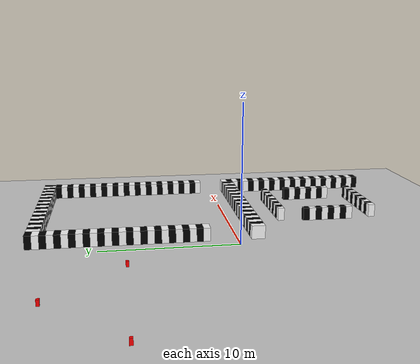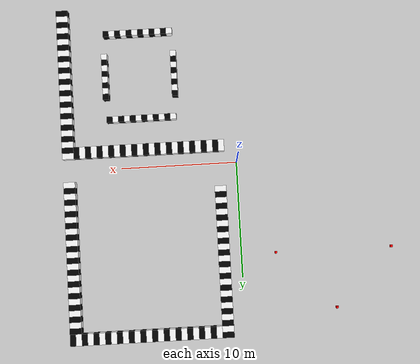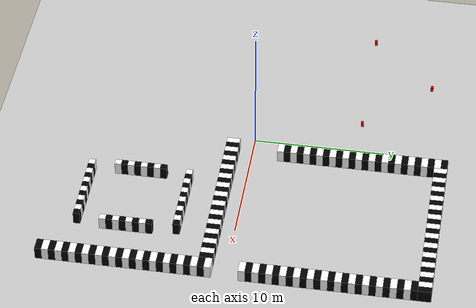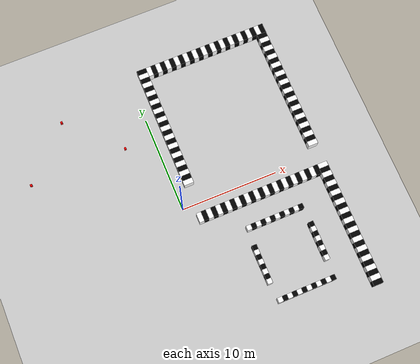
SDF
<sdf version="1.9">
 <world name="default">
  <model name="ground_plane">
   <static>true</static>
   <link name="link">
    <collision name="collision">
     <geometry><plane><normal>0 0 1</normal><size>100 100</size></plane></geometry>
    </collision>
    <visual name="visual">
     <geometry><plane><normal>0 0 1</normal><size>100 100</size></plane></geometry>
     <material>
      <ambient>0.8 0.8 0.8 1</ambient>
      <diffuse>0.8 0.8 0.8 1</diffuse>
      <specular>0.8 0.8 0.8 1</specular>
     </material>
    </visual>
   </link>
  </model>
  <model name="env2wall3">
   <static>true</static>
   <link name="link">
    <collision name="collision1">
     <geometry>
      <polyline>
       <point>14 -1</point>
       <point>14 -14</point>
       <point>15 -14</point>
       <point>15 -1</point>
       <height>1</height>
      </polyline>
     </geometry>
    </collision>
    <visual name="s1">
     <pose>14.5 -1.25 0.5 0 0 0</pose>
     <geometry><box><size>1 0.5 1</size></box></geometry>
     <material><ambient>1 1 1 1</ambient><diffuse>1 1 1 1</diffuse></material>
    </visual>
    <visual name="s2">
     <pose>14.5 -1.75 0.5 0 0 0</pose>
     <geometry><box><size>1 0.5 1</size></box></geometry>
     <material><ambient>0 0 0 1</ambient><diffuse>0 0 0 1</diffuse></material>
    </visual>
    <visual name="s3">
     <pose>14.5 -2.25 0.5 0 0 0</pose>
     <geometry><box><size>1 0.5 1</size></box></geometry>
     <material><ambient>1 1 1 1</ambient><diffuse>1 1 1 1</diffuse></material>
    </visual>
    <visual name="s4">
     <pose>14.5 -2.75 0.5 0 0 0</pose>
     <geometry><box><size>1 0.5 1</size></box></geometry>
     <material><ambient>0 0 0 1</ambient><diffuse>0 0 0 1</diffuse></material>
    </visual>
    <visual name="s5">
     <pose>14.5 -3.25 0.5 0 0 0</pose>
     <geometry><box><size>1 0.5 1</size></box></geometry>
     <material><ambient>1 1 1 1</ambient><diffuse>1 1 1 1</diffuse></material>
    </visual>
    <visual name="s6">
     <pose>14.5 -3.75 0.5 0 0 0</pose>
     <geometry><box><size>1 0.5 1</size></box></geometry>
     <material><ambient>0 0 0 1</ambient><diffuse>0 0 0 1</diffuse></material>
    </visual>
    <visual name="s7">
     <pose>14.5 -4.25 0.5 0 0 0</pose>
     <geometry><box><size>1 0.5 1</size></box></geometry>
     <material><ambient>1 1 1 1</ambient><diffuse>1 1 1 1</diffuse></material>
    </visual>
    <visual name="s8">
     <pose>14.5 -4.75 0.5 0 0 0</pose>
     <geometry><box><size>1 0.5 1</size></box></geometry>
     <material><ambient>0 0 0 1</ambient><diffuse>0 0 0 1</diffuse></material>
    </visual>
    <visual name="s9">
     <pose>14.5 -5.25 0.5 0 0 0</pose>
     <geometry><box><size>1 0.5 1</size></box></geometry>
     <material><ambient>1 1 1 1</ambient><diffuse>1 1 1 1</diffuse></material>
    </visual>
    <visual name="s10">
     <pose>14.5 -5.75 0.5 0 0 0</pose>
     <geometry><box><size>1 0.5 1</size></box></geometry>
     <material><ambient>0 0 0 1</ambient><diffuse>0 0 0 1</diffuse></material>
    </visual>
    <visual name="s11">
     <pose>14.5 -6.25 0.5 0 0 0</pose>
     <geometry><box><size>1 0.5 1</size></box></geometry>
     <material><ambient>1 1 1 1</ambient><diffuse>1 1 1 1</diffuse></material>
    </visual>
    <visual name="s12">
     <pose>14.5 -6.75 0.5 0 0 0</pose>
     <geometry><box><size>1 0.5 1</size></box></geometry>
     <material><ambient>0 0 0 1</ambient><diffuse>0 0 0 1</diffuse></material>
    </visual>
    <visual name="s13">
     <pose>14.5 -7.25 0.5 0 0 0</pose>
     <geometry><box><size>1 0.5 1</size></box></geometry>
     <material><ambient>1 1 1 1</ambient><diffuse>1 1 1 1</diffuse></material>
    </visual>
    <visual name="s14">
     <pose>14.5 -7.75 0.5 0 0 0</pose>
     <geometry><box><size>1 0.5 1</size></box></geometry>
     <material><ambient>0 0 0 1</ambient><diffuse>0 0 0 1</diffuse></material>
    </visual>
    <visual name="s15">
     <pose>14.5 -8.25 0.5 0 0 0</pose>
     <geometry><box><size>1 0.5 1</size></box></geometry>
     <material><ambient>1 1 1 1</ambient><diffuse>1 1 1 1</diffuse></material>
    </visual>
    <visual name="s16">
     <pose>14.5 -8.75 0.5 0 0 0</pose>
     <geometry><box><size>1 0.5 1</size></box></geometry>
     <material><ambient>0 0 0 1</ambient><diffuse>0 0 0 1</diffuse></material>
    </visual>
    <visual name="s17">
     <pose>14.5 -9.25 0.5 0 0 0</pose>
     <geometry><box><size>1 0.5 1</size></box></geometry>
     <material><ambient>1 1 1 1</ambient><diffuse>1 1 1 1</diffuse></material>
    </visual>
    <visual name="s18">
     <pose>14.5 -9.75 0.5 0 0 0</pose>
     <geometry><box><size>1 0.5 1</size></box></geometry>
     <material><ambient>0 0 0 1</ambient><diffuse>0 0 0 1</diffuse></material>
    </visual>
    <visual name="s19">
     <pose>14.5 -10.25 0.5 0 0 0</pose>
     <geometry><box><size>1 0.5 1</size></box></geometry>
     <material><ambient>1 1 1 1</ambient><diffuse>1 1 1 1</diffuse></material>
    </visual>
    <visual name="s20">
     <pose>14.5 -10.75 0.5 0 0 0</pose>
     <geometry><box><size>1 0.5 1</size></box></geometry>
     <material><ambient>0 0 0 1</ambient><diffuse>0 0 0 1</diffuse></material>
    </visual>
    <visual name="s21">
     <pose>14.5 -11.25 0.5 0 0 0</pose>
     <geometry><box><size>1 0.5 1</size></box></geometry>
     <material><ambient>1 1 1 1</ambient><diffuse>1 1 1 1</diffuse></material>
    </visual>
    <visual name="s22">
     <pose>14.5 -11.75 0.5 0 0 0</pose>
     <geometry><box><size>1 0.5 1</size></box></geometry>
     <material><ambient>0 0 0 1</ambient><diffuse>0 0 0 1</diffuse></material>
    </visual>
    <visual name="s23">
     <pose>14.5 -12.25 0.5 0 0 0</pose>
     <geometry><box><size>1 0.5 1</size></box></geometry>
     <material><ambient>1 1 1 1</ambient><diffuse>1 1 1 1</diffuse></material>
    </visual>
    <visual name="s24">
     <pose>14.5 -12.75 0.5 0 0 0</pose>
     <geometry><box><size>1 0.5 1</size></box></geometry>
     <material><ambient>0 0 0 1</ambient><diffuse>0 0 0 1</diffuse></material>
    </visual>
    <visual name="s25">
     <pose>14.5 -13.25 0.5 0 0 0</pose>
     <geometry><box><size>1 0.5 1</size></box></geometry>
     <material><ambient>1 1 1 1</ambient><diffuse>1 1 1 1</diffuse></material>
    </visual>
    <visual name="s26">
     <pose>14.5 -13.75 0.5 0 0 0</pose>
     <geometry><box><size>1 0.5 1</size></box></geometry>
     <material><ambient>0 0 0 1</ambient><diffuse>0 0 0 1</diffuse></material>
    </visual>
   </link>
  </model>
  <model name="env2wall4">
   <static>true</static>
   <link name="link">
    <collision name="collision1">
     <geometry>
      <polyline>
       <point>1 -1</point>
       <point>1 -2</point>
       <point>14 -2</point>
       <point>14 -1</point>
       <height>1</height>
      </polyline>
     </geometry>
    </collision>
    <visual name="s1">
     <pose>1.25 -1.5 0.5 0 0 0</pose>
     <geometry><box><size>0.5 1 1</size></box></geometry>
     <material><ambient>1 1 1 1</ambient><diffuse>1 1 1 1</diffuse></material>
    </visual>
    <visual name="s2">
     <pose>1.75 -1.5 0.5 0 0 0</pose>
     <geometry><box><size>0.5 1 1</size></box></geometry>
     <material><ambient>0 0 0 1</ambient><diffuse>0 0 0 1</diffuse></material>
    </visual>
    <visual name="s3">
     <pose>2.25 -1.5 0.5 0 0 0</pose>
     <geometry><box><size>0.5 1 1</size></box></geometry>
     <material><ambient>1 1 1 1</ambient><diffuse>1 1 1 1</diffuse></material>
    </visual>
    <visual name="s4">
     <pose>2.75 -1.5 0.5 0 0 0</pose>
     <geometry><box><size>0.5 1 1</size></box></geometry>
     <material><ambient>0 0 0 1</ambient><diffuse>0 0 0 1</diffuse></material>
    </visual>
    <visual name="s5">
     <pose>3.25 -1.5 0.5 0 0 0</pose>
     <geometry><box><size>0.5 1 1</size></box></geometry>
     <material><ambient>1 1 1 1</ambient><diffuse>1 1 1 1</diffuse></material>
    </visual>
    <visual name="s6">
     <pose>3.75 -1.5 0.5 0 0 0</pose>
     <geometry><box><size>0.5 1 1</size></box></geometry>
     <material><ambient>0 0 0 1</ambient><diffuse>0 0 0 1</diffuse></material>
    </visual>
    <visual name="s7">
     <pose>4.25 -1.5 0.5 0 0 0</pose>
     <geometry><box><size>0.5 1 1</size></box></geometry>
     <material><ambient>1 1 1 1</ambient><diffuse>1 1 1 1</diffuse></material>
    </visual>
    <visual name="s8">
     <pose>4.75 -1.5 0.5 0 0 0</pose>
     <geometry><box><size>0.5 1 1</size></box></geometry>
     <material><ambient>0 0 0 1</ambient><diffuse>0 0 0 1</diffuse></material>
    </visual>
    <visual name="s9">
     <pose>5.25 -1.5 0.5 0 0 0</pose>
     <geometry><box><size>0.5 1 1</size></box></geometry>
     <material><ambient>1 1 1 1</ambient><diffuse>1 1 1 1</diffuse></material>
    </visual>
    <visual name="s10">
     <pose>5.75 -1.5 0.5 0 0 0</pose>
     <geometry><box><size>0.5 1 1</size></box></geometry>
     <material><ambient>0 0 0 1</ambient><diffuse>0 0 0 1</diffuse></material>
    </visual>
    <visual name="s11">
     <pose>6.25 -1.5 0.5 0 0 0</pose>
     <geometry><box><size>0.5 1 1</size></box></geometry>
     <material><ambient>1 1 1 1</ambient><diffuse>1 1 1 1</diffuse></material>
    </visual>
    <visual name="s12">
     <pose>6.75 -1.5 0.5 0 0 0</pose>
     <geometry><box><size>0.5 1 1</size></box></geometry>
     <material><ambient>0 0 0 1</ambient><diffuse>0 0 0 1</diffuse></material>
    </visual>
    <visual name="s13">
     <pose>7.25 -1.5 0.5 0 0 0</pose>
     <geometry><box><size>0.5 1 1</size></box></geometry>
     <material><ambient>1 1 1 1</ambient><diffuse>1 1 1 1</diffuse></material>
    </visual>
    <visual name="s14">
     <pose>7.75 -1.5 0.5 0 0 0</pose>
     <geometry><box><size>0.5 1 1</size></box></geometry>
     <material><ambient>0 0 0 1</ambient><diffuse>0 0 0 1</diffuse></material>
    </visual>
    <visual name="s15">
     <pose>8.25 -1.5 0.5 0 0 0</pose>
     <geometry><box><size>0.5 1 1</size></box></geometry>
     <material><ambient>1 1 1 1</ambient><diffuse>1 1 1 1</diffuse></material>
    </visual>
    <visual name="s16">
     <pose>8.75 -1.5 0.5 0 0 0</pose>
     <geometry><box><size>0.5 1 1</size></box></geometry>
     <material><ambient>0 0 0 1</ambient><diffuse>0 0 0 1</diffuse></material>
    </visual>
    <visual name="s17">
     <pose>9.25 -1.5 0.5 0 0 0</pose>
     <geometry><box><size>0.5 1 1</size></box></geometry>
     <material><ambient>1 1 1 1</ambient><diffuse>1 1 1 1</diffuse></material>
    </visual>
    <visual name="s18">
     <pose>9.75 -1.5 0.5 0 0 0</pose>
     <geometry><box><size>0.5 1 1</size></box></geometry>
     <material><ambient>0 0 0 1</ambient><diffuse>0 0 0 1</diffuse></material>
    </visual>
    <visual name="s19">
     <pose>10.25 -1.5 0.5 0 0 0</pose>
     <geometry><box><size>0.5 1 1</size></box></geometry>
     <material><ambient>1 1 1 1</ambient><diffuse>1 1 1 1</diffuse></material>
    </visual>
    <visual name="s20">
     <pose>10.75 -1.5 0.5 0 0 0</pose>
     <geometry><box><size>0.5 1 1</size></box></geometry>
     <material><ambient>0 0 0 1</ambient><diffuse>0 0 0 1</diffuse></material>
    </visual>
    <visual name="s21">
     <pose>11.25 -1.5 0.5 0 0 0</pose>
     <geometry><box><size>0.5 1 1</size></box></geometry>
     <material><ambient>1 1 1 1</ambient><diffuse>1 1 1 1</diffuse></material>
    </visual>
    <visual name="s22">
     <pose>11.75 -1.5 0.5 0 0 0</pose>
     <geometry><box><size>0.5 1 1</size></box></geometry>
     <material><ambient>0 0 0 1</ambient><diffuse>0 0 0 1</diffuse></material>
    </visual>
    <visual name="s23">
     <pose>12.25 -1.5 0.5 0 0 0</pose>
     <geometry><box><size>0.5 1 1</size></box></geometry>
     <material><ambient>1 1 1 1</ambient><diffuse>1 1 1 1</diffuse></material>
    </visual>
    <visual name="s24">
     <pose>12.75 -1.5 0.5 0 0 0</pose>
     <geometry><box><size>0.5 1 1</size></box></geometry>
     <material><ambient>0 0 0 1</ambient><diffuse>0 0 0 1</diffuse></material>
    </visual>
    <visual name="s25">
     <pose>13.25 -1.5 0.5 0 0 0</pose>
     <geometry><box><size>0.5 1 1</size></box></geometry>
     <material><ambient>1 1 1 1</ambient><diffuse>1 1 1 1</diffuse></material>
    </visual>
    <visual name="s26">
     <pose>13.75 -1.5 0.5 0 0 0</pose>
     <geometry><box><size>0.5 1 1</size></box></geometry>
     <material><ambient>0 0 0 1</ambient><diffuse>0 0 0 1</diffuse></material>
    </visual>
   </link>
  </model>
  <model name="env2obs1">
   <static>true</static>
   <link name="link">
    <collision name="collision1">
     <geometry>
      <polyline>
       <point>5 -4.5</point>
       <point>5 -4</point>
       <point>11 -4</point>
       <point>11 -4.5</point>
       <height>1</height>
      </polyline>
     </geometry>
    </collision>
    <visual name="s1">
     <pose>5.25 -4.25 0.5 0 0 0</pose>
     <geometry><box><size>0.5 0.5 1</size></box></geometry>
     <material><ambient>1 1 1 1</ambient><diffuse>1 1 1 1</diffuse></material>
    </visual>
    <visual name="s2">
     <pose>5.75 -4.25 0.5 0 0 0</pose>
     <geometry><box><size>0.5 0.5 1</size></box></geometry>
     <material><ambient>0 0 0 1</ambient><diffuse>0 0 0 1</diffuse></material>
    </visual>
    <visual name="s3">
     <pose>6.25 -4.25 0.5 0 0 0</pose>
     <geometry><box><size>0.5 0.5 1</size></box></geometry>
     <material><ambient>1 1 1 1</ambient><diffuse>1 1 1 1</diffuse></material>
    </visual>
    <visual name="s4">
     <pose>6.75 -4.25 0.5 0 0 0</pose>
     <geometry><box><size>0.5 0.5 1</size></box></geometry>
     <material><ambient>0 0 0 1</ambient><diffuse>0 0 0 1</diffuse></material>
    </visual>
    <visual name="s5">
     <pose>7.25 -4.25 0.5 0 0 0</pose>
     <geometry><box><size>0.5 0.5 1</size></box></geometry>
     <material><ambient>1 1 1 1</ambient><diffuse>1 1 1 1</diffuse></material>
    </visual>
    <visual name="s6">
     <pose>7.75 -4.25 0.5 0 0 0</pose>
     <geometry><box><size>0.5 0.5 1</size></box></geometry>
     <material><ambient>0 0 0 1</ambient><diffuse>0 0 0 1</diffuse></material>
    </visual>
    <visual name="s7">
     <pose>8.25 -4.25 0.5 0 0 0</pose>
     <geometry><box><size>0.5 0.5 1</size></box></geometry>
     <material><ambient>1 1 1 1</ambient><diffuse>1 1 1 1</diffuse></material>
    </visual>
    <visual name="s8">
     <pose>8.75 -4.25 0.5 0 0 0</pose>
     <geometry><box><size>0.5 0.5 1</size></box></geometry>
     <material><ambient>0 0 0 1</ambient><diffuse>0 0 0 1</diffuse></material>
    </visual>
    <visual name="s9">
     <pose>9.25 -4.25 0.5 0 0 0</pose>
     <geometry><box><size>0.5 0.5 1</size></box></geometry>
     <material><ambient>1 1 1 1</ambient><diffuse>1 1 1 1</diffuse></material>
    </visual>
    <visual name="s10">
     <pose>9.75 -4.25 0.5 0 0 0</pose>
     <geometry><box><size>0.5 0.5 1</size></box></geometry>
     <material><ambient>0 0 0 1</ambient><diffuse>0 0 0 1</diffuse></material>
    </visual>
    <visual name="s11">
     <pose>10.25 -4.25 0.5 0 0 0</pose>
     <geometry><box><size>0.5 0.5 1</size></box></geometry>
     <material><ambient>1 1 1 1</ambient><diffuse>1 1 1 1</diffuse></material>
    </visual>
    <visual name="s12">
     <pose>10.75 -4.25 0.5 0 0 0</pose>
     <geometry><box><size>0.5 0.5 1</size></box></geometry>
     <material><ambient>0 0 0 1</ambient><diffuse>0 0 0 1</diffuse></material>
    </visual>
   </link>
  </model>
  <model name="env2obs2">
   <static>true</static>
   <link name="link">
    <collision name="collision1">
     <geometry>
      <polyline>
       <point>5 -11.5</point>
       <point>5 -12</point>
       <point>11 -12</point>
       <point>11 -11.5</point>
       <height>1</height>
      </polyline>
     </geometry>
    </collision>
    <visual name="s1">
     <pose>5.25 -11.75 0.5 0 0 0</pose>
     <geometry><box><size>0.5 0.5 1</size></box></geometry>
     <material><ambient>1 1 1 1</ambient><diffuse>1 1 1 1</diffuse></material>
    </visual>
    <visual name="s2">
     <pose>5.75 -11.75 0.5 0 0 0</pose>
     <geometry><box><size>0.5 0.5 1</size></box></geometry>
     <material><ambient>0 0 0 1</ambient><diffuse>0 0 0 1</diffuse></material>
    </visual>
    <visual name="s3">
     <pose>6.25 -11.75 0.5 0 0 0</pose>
     <geometry><box><size>0.5 0.5 1</size></box></geometry>
     <material><ambient>1 1 1 1</ambient><diffuse>1 1 1 1</diffuse></material>
    </visual>
    <visual name="s4">
     <pose>6.75 -11.75 0.5 0 0 0</pose>
     <geometry><box><size>0.5 0.5 1</size></box></geometry>
     <material><ambient>0 0 0 1</ambient><diffuse>0 0 0 1</diffuse></material>
    </visual>
    <visual name="s5">
     <pose>7.25 -11.75 0.5 0 0 0</pose>
     <geometry><box><size>0.5 0.5 1</size></box></geometry>
     <material><ambient>1 1 1 1</ambient><diffuse>1 1 1 1</diffuse></material>
    </visual>
    <visual name="s6">
     <pose>7.75 -11.75 0.5 0 0 0</pose>
     <geometry><box><size>0.5 0.5 1</size></box></geometry>
     <material><ambient>0 0 0 1</ambient><diffuse>0 0 0 1</diffuse></material>
    </visual>
    <visual name="s7">
     <pose>8.25 -11.75 0.5 0 0 0</pose>
     <geometry><box><size>0.5 0.5 1</size></box></geometry>
     <material><ambient>1 1 1 1</ambient><diffuse>1 1 1 1</diffuse></material>
    </visual>
    <visual name="s8">
     <pose>8.75 -11.75 0.5 0 0 0</pose>
     <geometry><box><size>0.5 0.5 1</size></box></geometry>
     <material><ambient>0 0 0 1</ambient><diffuse>0 0 0 1</diffuse></material>
    </visual>
    <visual name="s9">
     <pose>9.25 -11.75 0.5 0 0 0</pose>
     <geometry><box><size>0.5 0.5 1</size></box></geometry>
     <material><ambient>1 1 1 1</ambient><diffuse>1 1 1 1</diffuse></material>
    </visual>
    <visual name="s10">
     <pose>9.75 -11.75 0.5 0 0 0</pose>
     <geometry><box><size>0.5 0.5 1</size></box></geometry>
     <material><ambient>0 0 0 1</ambient><diffuse>0 0 0 1</diffuse></material>
    </visual>
    <visual name="s11">
     <pose>10.25 -11.75 0.5 0 0 0</pose>
     <geometry><box><size>0.5 0.5 1</size></box></geometry>
     <material><ambient>1 1 1 1</ambient><diffuse>1 1 1 1</diffuse></material>
    </visual>
    <visual name="s12">
     <pose>10.75 -11.75 0.5 0 0 0</pose>
     <geometry><box><size>0.5 0.5 1</size></box></geometry>
     <material><ambient>0 0 0 1</ambient><diffuse>0 0 0 1</diffuse></material>
    </visual>
   </link>
  </model>
  <model name="env2obs3">
   <static>true</static>
   <link name="link">
    <collision name="collision1">
     <geometry>
      <polyline>
       <point>5.25 -6</point>
       <point>4.75 -6</point>
       <point>4.75 -10</point>
       <point>5.25 -10</point>
       <height>1</height>
      </polyline>
     </geometry>
    </collision>
    <visual name="s1">
     <pose>5 -9.75 0.5 0 0 0</pose>
     <geometry><box><size>0.5 0.5 1</size></box></geometry>
     <material><ambient>1 1 1 1</ambient><diffuse>1 1 1 1</diffuse></material>
    </visual>
    <visual name="s2">
     <pose>5 -9.25 0.5 0 0 0</pose>
     <geometry><box><size>0.5 0.5 1</size></box></geometry>
     <material><ambient>0 0 0 1</ambient><diffuse>0 0 0 1</diffuse></material>
    </visual>
    <visual name="s3">
     <pose>5 -8.75 0.5 0 0 0</pose>
     <geometry><box><size>0.5 0.5 1</size></box></geometry>
     <material><ambient>1 1 1 1</ambient><diffuse>1 1 1 1</diffuse></material>
    </visual>
    <visual name="s4">
     <pose>5 -8.25 0.5 0 0 0</pose>
     <geometry><box><size>0.5 0.5 1</size></box></geometry>
     <material><ambient>0 0 0 1</ambient><diffuse>0 0 0 1</diffuse></material>
    </visual>
    <visual name="s5">
     <pose>5 -7.75 0.5 0 0 0</pose>
     <geometry><box><size>0.5 0.5 1</size></box></geometry>
     <material><ambient>1 1 1 1</ambient><diffuse>1 1 1 1</diffuse></material>
    </visual>
    <visual name="s6">
     <pose>5 -7.25 0.5 0 0 0</pose>
     <geometry><box><size>0.5 0.5 1</size></box></geometry>
     <material><ambient>0 0 0 1</ambient><diffuse>0 0 0 1</diffuse></material>
    </visual>
    <visual name="s7">
     <pose>5 -6.75 0.5 0 0 0</pose>
     <geometry><box><size>0.5 0.5 1</size></box></geometry>
     <material><ambient>1 1 1 1</ambient><diffuse>1 1 1 1</diffuse></material>
    </visual>
    <visual name="s8">
     <pose>5 -6.25 0.5 0 0 0</pose>
     <geometry><box><size>0.5 0.5 1</size></box></geometry>
     <material><ambient>0 0 0 1</ambient><diffuse>0 0 0 1</diffuse></material>
    </visual>
   </link>
  </model>
  <model name="env2obs4">
   <static>true</static>
   <link name="link">
    <collision name="collision1">
     <geometry>
      <polyline>
       <point>10.75 -6</point>
       <point>11.25 -6</point>
       <point>11.25 -10</point>
       <point>10.75 -10</point>
       <height>1</height>
      </polyline>
     </geometry>
    </collision>
    <visual name="s1">
     <pose>11 -9.75 0.5 0 0 0</pose>
     <geometry><box><size>0.5 0.5 1</size></box></geometry>
     <material><ambient>1 1 1 1</ambient><diffuse>1 1 1 1</diffuse></material>
    </visual>
    <visual name="s2">
     <pose>11 -9.25 0.5 0 0 0</pose>
     <geometry><box><size>0.5 0.5 1</size></box></geometry>
     <material><ambient>0 0 0 1</ambient><diffuse>0 0 0 1</diffuse></material>
    </visual>
    <visual name="s3">
     <pose>11 -8.75 0.5 0 0 0</pose>
     <geometry><box><size>0.5 0.5 1</size></box></geometry>
     <material><ambient>1 1 1 1</ambient><diffuse>1 1 1 1</diffuse></material>
    </visual>
    <visual name="s4">
     <pose>11 -8.25 0.5 0 0 0</pose>
     <geometry><box><size>0.5 0.5 1</size></box></geometry>
     <material><ambient>0 0 0 1</ambient><diffuse>0 0 0 1</diffuse></material>
    </visual>
    <visual name="s5">
     <pose>11 -7.75 0.5 0 0 0</pose>
     <geometry><box><size>0.5 0.5 1</size></box></geometry>
     <material><ambient>1 1 1 1</ambient><diffuse>1 1 1 1</diffuse></material>
    </visual>
    <visual name="s6">
     <pose>11 -7.25 0.5 0 0 0</pose>
     <geometry><box><size>0.5 0.5 1</size></box></geometry>
     <material><ambient>0 0 0 1</ambient><diffuse>0 0 0 1</diffuse></material>
    </visual>
    <visual name="s7">
     <pose>11 -6.75 0.5 0 0 0</pose>
     <geometry><box><size>0.5 0.5 1</size></box></geometry>
     <material><ambient>1 1 1 1</ambient><diffuse>1 1 1 1</diffuse></material>
    </visual>
    <visual name="s8">
     <pose>11 -6.25 0.5 0 0 0</pose>
     <geometry><box><size>0.5 0.5 1</size></box></geometry>
     <material><ambient>0 0 0 1</ambient><diffuse>0 0 0 1</diffuse></material>
    </visual>
   </link>
  </model>
  <model name="env3wall1">
   <static>true</static>
   <link name="link">
    <collision name="collision1">
     <geometry>
      <polyline>
       <point>2 2</point>
       <point>1 2</point>
       <point>1 15</point>
       <point>2 15</point>
       <height>1</height>
      </polyline>
     </geometry>
    </collision>
    <visual name="s1">
     <pose>1.5 2.25 0.5 0 0 0</pose>
     <geometry><box><size>1 0.5 1</size></box></geometry>
     <material><ambient>1 1 1 1</ambient><diffuse>1 1 1 1</diffuse></material>
    </visual>
    <visual name="s2">
     <pose>1.5 2.75 0.5 0 0 0</pose>
     <geometry><box><size>1 0.5 1</size></box></geometry>
     <material><ambient>0 0 0 1</ambient><diffuse>0 0 0 1</diffuse></material>
    </visual>
    <visual name="s3">
     <pose>1.5 3.25 0.5 0 0 0</pose>
     <geometry><box><size>1 0.5 1</size></box></geometry>
     <material><ambient>1 1 1 1</ambient><diffuse>1 1 1 1</diffuse></material>
    </visual>
    <visual name="s4">
     <pose>1.5 3.75 0.5 0 0 0</pose>
     <geometry><box><size>1 0.5 1</size></box></geometry>
     <material><ambient>0 0 0 1</ambient><diffuse>0 0 0 1</diffuse></material>
    </visual>
    <visual name="s5">
     <pose>1.5 4.25 0.5 0 0 0</pose>
     <geometry><box><size>1 0.5 1</size></box></geometry>
     <material><ambient>1 1 1 1</ambient><diffuse>1 1 1 1</diffuse></material>
    </visual>
    <visual name="s6">
     <pose>1.5 4.75 0.5 0 0 0</pose>
     <geometry><box><size>1 0.5 1</size></box></geometry>
     <material><ambient>0 0 0 1</ambient><diffuse>0 0 0 1</diffuse></material>
    </visual>
    <visual name="s7">
     <pose>1.5 5.25 0.5 0 0 0</pose>
     <geometry><box><size>1 0.5 1</size></box></geometry>
     <material><ambient>1 1 1 1</ambient><diffuse>1 1 1 1</diffuse></material>
    </visual>
    <visual name="s8">
     <pose>1.5 5.75 0.5 0 0 0</pose>
     <geometry><box><size>1 0.5 1</size></box></geometry>
     <material><ambient>0 0 0 1</ambient><diffuse>0 0 0 1</diffuse></material>
    </visual>
    <visual name="s9">
     <pose>1.5 6.25 0.5 0 0 0</pose>
     <geometry><box><size>1 0.5 1</size></box></geometry>
     <material><ambient>1 1 1 1</ambient><diffuse>1 1 1 1</diffuse></material>
    </visual>
    <visual name="s10">
     <pose>1.5 6.75 0.5 0 0 0</pose>
     <geometry><box><size>1 0.5 1</size></box></geometry>
     <material><ambient>0 0 0 1</ambient><diffuse>0 0 0 1</diffuse></material>
    </visual>
    <visual name="s11">
     <pose>1.5 7.25 0.5 0 0 0</pose>
     <geometry><box><size>1 0.5 1</size></box></geometry>
     <material><ambient>1 1 1 1</ambient><diffuse>1 1 1 1</diffuse></material>
    </visual>
    <visual name="s12">
     <pose>1.5 7.75 0.5 0 0 0</pose>
     <geometry><box><size>1 0.5 1</size></box></geometry>
     <material><ambient>0 0 0 1</ambient><diffuse>0 0 0 1</diffuse></material>
    </visual>
    <visual name="s13">
     <pose>1.5 8.25 0.5 0 0 0</pose>
     <geometry><box><size>1 0.5 1</size></box></geometry>
     <material><ambient>1 1 1 1</ambient><diffuse>1 1 1 1</diffuse></material>
    </visual>
    <visual name="s14">
     <pose>1.5 8.75 0.5 0 0 0</pose>
     <geometry><box><size>1 0.5 1</size></box></geometry>
     <material><ambient>0 0 0 1</ambient><diffuse>0 0 0 1</diffuse></material>
    </visual>
    <visual name="s15">
     <pose>1.5 9.25 0.5 0 0 0</pose>
     <geometry><box><size>1 0.5 1</size></box></geometry>
     <material><ambient>1 1 1 1</ambient><diffuse>1 1 1 1</diffuse></material>
    </visual>
    <visual name="s16">
     <pose>1.5 9.75 0.5 0 0 0</pose>
     <geometry><box><size>1 0.5 1</size></box></geometry>
     <material><ambient>0 0 0 1</ambient><diffuse>0 0 0 1</diffuse></material>
    </visual>
    <visual name="s17">
     <pose>1.5 10.25 0.5 0 0 0</pose>
     <geometry><box><size>1 0.5 1</size></box></geometry>
     <material><ambient>1 1 1 1</ambient><diffuse>1 1 1 1</diffuse></material>
    </visual>
    <visual name="s18">
     <pose>1.5 10.75 0.5 0 0 0</pose>
     <geometry><box><size>1 0.5 1</size></box></geometry>
     <material><ambient>0 0 0 1</ambient><diffuse>0 0 0 1</diffuse></material>
    </visual>
    <visual name="s19">
     <pose>1.5 11.25 0.5 0 0 0</pose>
     <geometry><box><size>1 0.5 1</size></box></geometry>
     <material><ambient>1 1 1 1</ambient><diffuse>1 1 1 1</diffuse></material>
    </visual>
    <visual name="s20">
     <pose>1.5 11.75 0.5 0 0 0</pose>
     <geometry><box><size>1 0.5 1</size></box></geometry>
     <material><ambient>0 0 0 1</ambient><diffuse>0 0 0 1</diffuse></material>
    </visual>
    <visual name="s21">
     <pose>1.5 12.25 0.5 0 0 0</pose>
     <geometry><box><size>1 0.5 1</size></box></geometry>
     <material><ambient>1 1 1 1</ambient><diffuse>1 1 1 1</diffuse></material>
    </visual>
    <visual name="s22">
     <pose>1.5 12.75 0.5 0 0 0</pose>
     <geometry><box><size>1 0.5 1</size></box></geometry>
     <material><ambient>0 0 0 1</ambient><diffuse>0 0 0 1</diffuse></material>
    </visual>
    <visual name="s23">
     <pose>1.5 13.25 0.5 0 0 0</pose>
     <geometry><box><size>1 0.5 1</size></box></geometry>
     <material><ambient>1 1 1 1</ambient><diffuse>1 1 1 1</diffuse></material>
    </visual>
    <visual name="s24">
     <pose>1.5 13.75 0.5 0 0 0</pose>
     <geometry><box><size>1 0.5 1</size></box></geometry>
     <material><ambient>0 0 0 1</ambient><diffuse>0 0 0 1</diffuse></material>
    </visual>
    <visual name="s25">
     <pose>1.5 14.25 0.5 0 0 0</pose>
     <geometry><box><size>1 0.5 1</size></box></geometry>
     <material><ambient>1 1 1 1</ambient><diffuse>1 1 1 1</diffuse></material>
    </visual>
    <visual name="s26">
     <pose>1.5 14.75 0.5 0 0 0</pose>
     <geometry><box><size>1 0.5 1</size></box></geometry>
     <material><ambient>0 0 0 1</ambient><diffuse>0 0 0 1</diffuse></material>
    </visual>
   </link>
  </model>
  <model name="env3wall2">
   <static>true</static>
   <link name="link">
    <collision name="collision1">
     <geometry>
      <polyline>
       <point>2 14</point>
       <point>2 15</point>
       <point>15 15</point>
       <point>15 14</point>
       <height>1</height>
      </polyline>
     </geometry>
    </collision>
    <visual name="s1">
     <pose>2.25 14.5 0.5 0 0 0</pose>
     <geometry><box><size>0.5 1 1</size></box></geometry>
     <material><ambient>1 1 1 1</ambient><diffuse>1 1 1 1</diffuse></material>
    </visual>
    <visual name="s2">
     <pose>2.75 14.5 0.5 0 0 0</pose>
     <geometry><box><size>0.5 1 1</size></box></geometry>
     <material><ambient>0 0 0 1</ambient><diffuse>0 0 0 1</diffuse></material>
    </visual>
    <visual name="s3">
     <pose>3.25 14.5 0.5 0 0 0</pose>
     <geometry><box><size>0.5 1 1</size></box></geometry>
     <material><ambient>1 1 1 1</ambient><diffuse>1 1 1 1</diffuse></material>
    </visual>
    <visual name="s4">
     <pose>3.75 14.5 0.5 0 0 0</pose>
     <geometry><box><size>0.5 1 1</size></box></geometry>
     <material><ambient>0 0 0 1</ambient><diffuse>0 0 0 1</diffuse></material>
    </visual>
    <visual name="s5">
     <pose>4.25 14.5 0.5 0 0 0</pose>
     <geometry><box><size>0.5 1 1</size></box></geometry>
     <material><ambient>1 1 1 1</ambient><diffuse>1 1 1 1</diffuse></material>
    </visual>
    <visual name="s6">
     <pose>4.75 14.5 0.5 0 0 0</pose>
     <geometry><box><size>0.5 1 1</size></box></geometry>
     <material><ambient>0 0 0 1</ambient><diffuse>0 0 0 1</diffuse></material>
    </visual>
    <visual name="s7">
     <pose>5.25 14.5 0.5 0 0 0</pose>
     <geometry><box><size>0.5 1 1</size></box></geometry>
     <material><ambient>1 1 1 1</ambient><diffuse>1 1 1 1</diffuse></material>
    </visual>
    <visual name="s8">
     <pose>5.75 14.5 0.5 0 0 0</pose>
     <geometry><box><size>0.5 1 1</size></box></geometry>
     <material><ambient>0 0 0 1</ambient><diffuse>0 0 0 1</diffuse></material>
    </visual>
    <visual name="s9">
     <pose>6.25 14.5 0.5 0 0 0</pose>
     <geometry><box><size>0.5 1 1</size></box></geometry>
     <material><ambient>1 1 1 1</ambient><diffuse>1 1 1 1</diffuse></material>
    </visual>
    <visual name="s10">
     <pose>6.75 14.5 0.5 0 0 0</pose>
     <geometry><box><size>0.5 1 1</size></box></geometry>
     <material><ambient>0 0 0 1</ambient><diffuse>0 0 0 1</diffuse></material>
    </visual>
    <visual name="s11">
     <pose>7.25 14.5 0.5 0 0 0</pose>
     <geometry><box><size>0.5 1 1</size></box></geometry>
     <material><ambient>1 1 1 1</ambient><diffuse>1 1 1 1</diffuse></material>
    </visual>
    <visual name="s12">
     <pose>7.75 14.5 0.5 0 0 0</pose>
     <geometry><box><size>0.5 1 1</size></box></geometry>
     <material><ambient>0 0 0 1</ambient><diffuse>0 0 0 1</diffuse></material>
    </visual>
    <visual name="s13">
     <pose>8.25 14.5 0.5 0 0 0</pose>
     <geometry><box><size>0.5 1 1</size></box></geometry>
     <material><ambient>1 1 1 1</ambient><diffuse>1 1 1 1</diffuse></material>
    </visual>
    <visual name="s14">
     <pose>8.75 14.5 0.5 0 0 0</pose>
     <geometry><box><size>0.5 1 1</size></box></geometry>
     <material><ambient>0 0 0 1</ambient><diffuse>0 0 0 1</diffuse></material>
    </visual>
    <visual name="s15">
     <pose>9.25 14.5 0.5 0 0 0</pose>
     <geometry><box><size>0.5 1 1</size></box></geometry>
     <material><ambient>1 1 1 1</ambient><diffuse>1 1 1 1</diffuse></material>
    </visual>
    <visual name="s16">
     <pose>9.75 14.5 0.5 0 0 0</pose>
     <geometry><box><size>0.5 1 1</size></box></geometry>
     <material><ambient>0 0 0 1</ambient><diffuse>0 0 0 1</diffuse></material>
    </visual>
    <visual name="s17">
     <pose>10.25 14.5 0.5 0 0 0</pose>
     <geometry><box><size>0.5 1 1</size></box></geometry>
     <material><ambient>1 1 1 1</ambient><diffuse>1 1 1 1</diffuse></material>
    </visual>
    <visual name="s18">
     <pose>10.75 14.5 0.5 0 0 0</pose>
     <geometry><box><size>0.5 1 1</size></box></geometry>
     <material><ambient>0 0 0 1</ambient><diffuse>0 0 0 1</diffuse></material>
    </visual>
    <visual name="s19">
     <pose>11.25 14.5 0.5 0 0 0</pose>
     <geometry><box><size>0.5 1 1</size></box></geometry>
     <material><ambient>1 1 1 1</ambient><diffuse>1 1 1 1</diffuse></material>
    </visual>
    <visual name="s20">
     <pose>11.75 14.5 0.5 0 0 0</pose>
     <geometry><box><size>0.5 1 1</size></box></geometry>
     <material><ambient>0 0 0 1</ambient><diffuse>0 0 0 1</diffuse></material>
    </visual>
    <visual name="s21">
     <pose>12.25 14.5 0.5 0 0 0</pose>
     <geometry><box><size>0.5 1 1</size></box></geometry>
     <material><ambient>1 1 1 1</ambient><diffuse>1 1 1 1</diffuse></material>
    </visual>
    <visual name="s22">
     <pose>12.75 14.5 0.5 0 0 0</pose>
     <geometry><box><size>0.5 1 1</size></box></geometry>
     <material><ambient>0 0 0 1</ambient><diffuse>0 0 0 1</diffuse></material>
    </visual>
    <visual name="s23">
     <pose>13.25 14.5 0.5 0 0 0</pose>
     <geometry><box><size>0.5 1 1</size></box></geometry>
     <material><ambient>1 1 1 1</ambient><diffuse>1 1 1 1</diffuse></material>
    </visual>
    <visual name="s24">
     <pose>13.75 14.5 0.5 0 0 0</pose>
     <geometry><box><size>0.5 1 1</size></box></geometry>
     <material><ambient>0 0 0 1</ambient><diffuse>0 0 0 1</diffuse></material>
    </visual>
    <visual name="s25">
     <pose>14.25 14.5 0.5 0 0 0</pose>
     <geometry><box><size>0.5 1 1</size></box></geometry>
     <material><ambient>1 1 1 1</ambient><diffuse>1 1 1 1</diffuse></material>
    </visual>
    <visual name="s26">
     <pose>14.75 14.5 0.5 0 0 0</pose>
     <geometry><box><size>0.5 1 1</size></box></geometry>
     <material><ambient>0 0 0 1</ambient><diffuse>0 0 0 1</diffuse></material>
    </visual>
   </link>
  </model>
  <model name="env3wall3">
   <static>true</static>
   <link name="link">
    <collision name="collision1">
     <geometry>
      <polyline>
       <point>14 1</point>
       <point>14 14</point>
       <point>15 14</point>
       <point>15 1</point>
       <height>1</height>
      </polyline>
     </geometry>
    </collision>
    <visual name="s1">
     <pose>14.5 1.25 0.5 0 0 0</pose>
     <geometry><box><size>1 0.5 1</size></box></geometry>
     <material><ambient>1 1 1 1</ambient><diffuse>1 1 1 1</diffuse></material>
    </visual>
    <visual name="s2">
     <pose>14.5 1.75 0.5 0 0 0</pose>
     <geometry><box><size>1 0.5 1</size></box></geometry>
     <material><ambient>0 0 0 1</ambient><diffuse>0 0 0 1</diffuse></material>
    </visual>
    <visual name="s3">
     <pose>14.5 2.25 0.5 0 0 0</pose>
     <geometry><box><size>1 0.5 1</size></box></geometry>
     <material><ambient>1 1 1 1</ambient><diffuse>1 1 1 1</diffuse></material>
    </visual>
    <visual name="s4">
     <pose>14.5 2.75 0.5 0 0 0</pose>
     <geometry><box><size>1 0.5 1</size></box></geometry>
     <material><ambient>0 0 0 1</ambient><diffuse>0 0 0 1</diffuse></material>
    </visual>
    <visual name="s5">
     <pose>14.5 3.25 0.5 0 0 0</pose>
     <geometry><box><size>1 0.5 1</size></box></geometry>
     <material><ambient>1 1 1 1</ambient><diffuse>1 1 1 1</diffuse></material>
    </visual>
    <visual name="s6">
     <pose>14.5 3.75 0.5 0 0 0</pose>
     <geometry><box><size>1 0.5 1</size></box></geometry>
     <material><ambient>0 0 0 1</ambient><diffuse>0 0 0 1</diffuse></material>
    </visual>
    <visual name="s7">
     <pose>14.5 4.25 0.5 0 0 0</pose>
     <geometry><box><size>1 0.5 1</size></box></geometry>
     <material><ambient>1 1 1 1</ambient><diffuse>1 1 1 1</diffuse></material>
    </visual>
    <visual name="s8">
     <pose>14.5 4.75 0.5 0 0 0</pose>
     <geometry><box><size>1 0.5 1</size></box></geometry>
     <material><ambient>0 0 0 1</ambient><diffuse>0 0 0 1</diffuse></material>
    </visual>
    <visual name="s9">
     <pose>14.5 5.25 0.5 0 0 0</pose>
     <geometry><box><size>1 0.5 1</size></box></geometry>
     <material><ambient>1 1 1 1</ambient><diffuse>1 1 1 1</diffuse></material>
    </visual>
    <visual name="s10">
     <pose>14.5 5.75 0.5 0 0 0</pose>
     <geometry><box><size>1 0.5 1</size></box></geometry>
     <material><ambient>0 0 0 1</ambient><diffuse>0 0 0 1</diffuse></material>
    </visual>
    <visual name="s11">
     <pose>14.5 6.25 0.5 0 0 0</pose>
     <geometry><box><size>1 0.5 1</size></box></geometry>
     <material><ambient>1 1 1 1</ambient><diffuse>1 1 1 1</diffuse></material>
    </visual>
    <visual name="s12">
     <pose>14.5 6.75 0.5 0 0 0</pose>
     <geometry><box><size>1 0.5 1</size></box></geometry>
     <material><ambient>0 0 0 1</ambient><diffuse>0 0 0 1</diffuse></material>
    </visual>
    <visual name="s13">
     <pose>14.5 7.25 0.5 0 0 0</pose>
     <geometry><box><size>1 0.5 1</size></box></geometry>
     <material><ambient>1 1 1 1</ambient><diffuse>1 1 1 1</diffuse></material>
    </visual>
    <visual name="s14">
     <pose>14.5 7.75 0.5 0 0 0</pose>
     <geometry><box><size>1 0.5 1</size></box></geometry>
     <material><ambient>0 0 0 1</ambient><diffuse>0 0 0 1</diffuse></material>
    </visual>
    <visual name="s15">
     <pose>14.5 8.25 0.5 0 0 0</pose>
     <geometry><box><size>1 0.5 1</size></box></geometry>
     <material><ambient>1 1 1 1</ambient><diffuse>1 1 1 1</diffuse></material>
    </visual>
    <visual name="s16">
     <pose>14.5 8.75 0.5 0 0 0</pose>
     <geometry><box><size>1 0.5 1</size></box></geometry>
     <material><ambient>0 0 0 1</ambient><diffuse>0 0 0 1</diffuse></material>
    </visual>
    <visual name="s17">
     <pose>14.5 9.25 0.5 0 0 0</pose>
     <geometry><box><size>1 0.5 1</size></box></geometry>
     <material><ambient>1 1 1 1</ambient><diffuse>1 1 1 1</diffuse></material>
    </visual>
    <visual name="s18">
     <pose>14.5 9.75 0.5 0 0 0</pose>
     <geometry><box><size>1 0.5 1</size></box></geometry>
     <material><ambient>0 0 0 1</ambient><diffuse>0 0 0 1</diffuse></material>
    </visual>
    <visual name="s19">
     <pose>14.5 10.25 0.5 0 0 0</pose>
     <geometry><box><size>1 0.5 1</size></box></geometry>
     <material><ambient>1 1 1 1</ambient><diffuse>1 1 1 1</diffuse></material>
    </visual>
    <visual name="s20">
     <pose>14.5 10.75 0.5 0 0 0</pose>
     <geometry><box><size>1 0.5 1</size></box></geometry>
     <material><ambient>0 0 0 1</ambient><diffuse>0 0 0 1</diffuse></material>
    </visual>
    <visual name="s21">
     <pose>14.5 11.25 0.5 0 0 0</pose>
     <geometry><box><size>1 0.5 1</size></box></geometry>
     <material><ambient>1 1 1 1</ambient><diffuse>1 1 1 1</diffuse></material>
    </visual>
    <visual name="s22">
     <pose>14.5 11.75 0.5 0 0 0</pose>
     <geometry><box><size>1 0.5 1</size></box></geometry>
     <material><ambient>0 0 0 1</ambient><diffuse>0 0 0 1</diffuse></material>
    </visual>
    <visual name="s23">
     <pose>14.5 12.25 0.5 0 0 0</pose>
     <geometry><box><size>1 0.5 1</size></box></geometry>
     <material><ambient>1 1 1 1</ambient><diffuse>1 1 1 1</diffuse></material>
    </visual>
    <visual name="s24">
     <pose>14.5 12.75 0.5 0 0 0</pose>
     <geometry><box><size>1 0.5 1</size></box></geometry>
     <material><ambient>0 0 0 1</ambient><diffuse>0 0 0 1</diffuse></material>
    </visual>
    <visual name="s25">
     <pose>14.5 13.25 0.5 0 0 0</pose>
     <geometry><box><size>1 0.5 1</size></box></geometry>
     <material><ambient>1 1 1 1</ambient><diffuse>1 1 1 1</diffuse></material>
    </visual>
    <visual name="s26">
     <pose>14.5 13.75 0.5 0 0 0</pose>
     <geometry><box><size>1 0.5 1</size></box></geometry>
     <material><ambient>0 0 0 1</ambient><diffuse>0 0 0 1</diffuse></material>
    </visual>
   </link>
  </model>
  <model name="env4_dyn1">
   <pose>-3 8 0.2 0 0 0</pose>
   <link name="link">
    <collision name="collision"><geometry><box><size>0.2 0.2 0.4</size></box></geometry></collision>
    <visual name="visual">
     <geometry><box><size>0.2 0.2 0.4</size></box></geometry>
     <material><ambient>1 0 0 1</ambient><diffuse>1 0 0 1</diffuse></material>
    </visual>
   </link>
  </model>
  <model name="env4_dyn2">
   <pose>-13 8 0.2 0 0 0</pose>
   <link name="link">
    <collision name="collision"><geometry><box><size>0.2 0.2 0.4</size></box></geometry></collision>
    <visual name="visual">
     <geometry><box><size>0.2 0.2 0.4</size></box></geometry>
     <material><ambient>1 0 0 1</ambient><diffuse>1 0 0 1</diffuse></material>
    </visual>
   </link>
  </model>
  <model name="env4_dyn3">
   <pose>-8 13 0.2 0 0 0</pose>
   <link name="link">
    <collision name="collision"><geometry><box><size>0.2 0.2 0.4</size></box></geometry></collision>
    <visual name="visual">
     <geometry><box><size>0.2 0.2 0.4</size></box></geometry>
     <material><ambient>1 0 0 1</ambient><diffuse>1 0 0 1</diffuse></material>
    </visual>
   </link>
  </model>
 </world>
</sdf>
